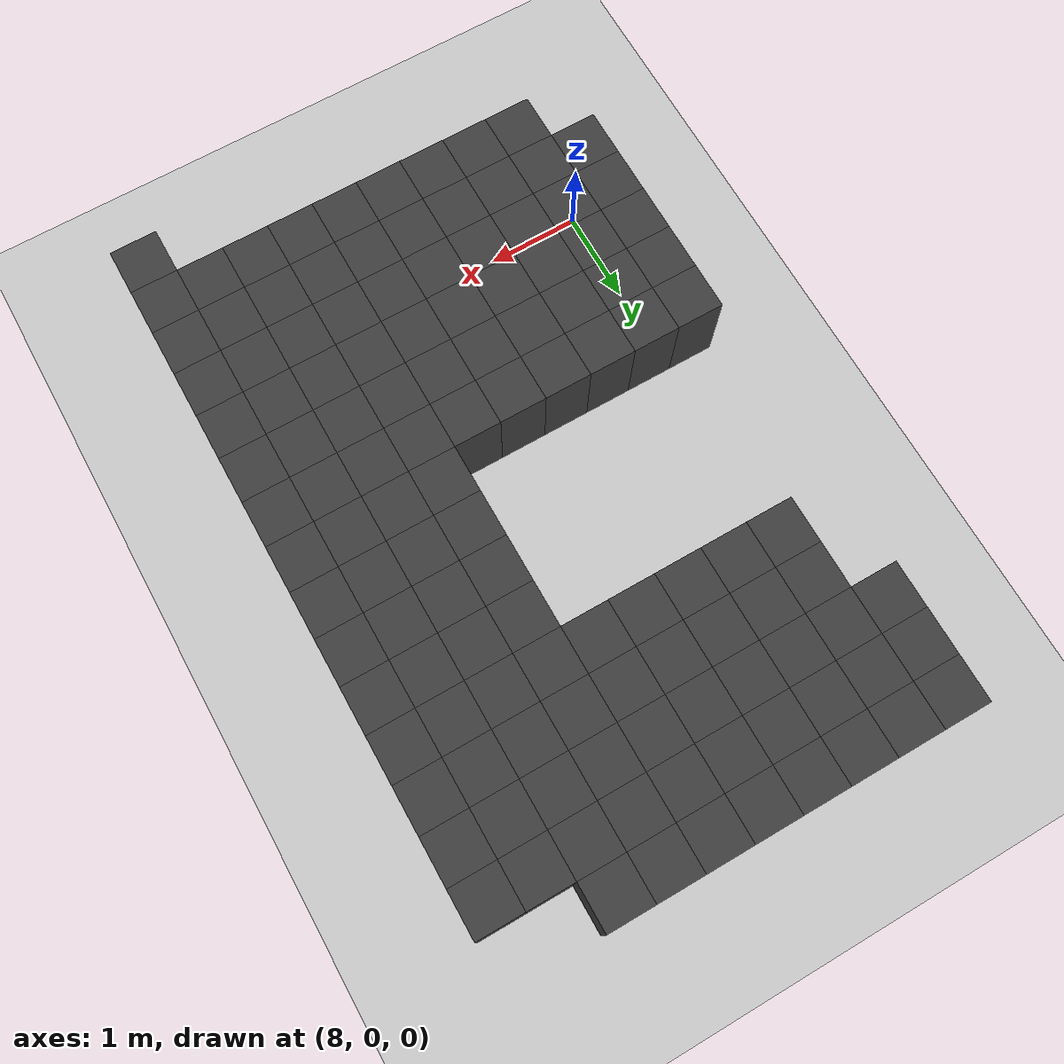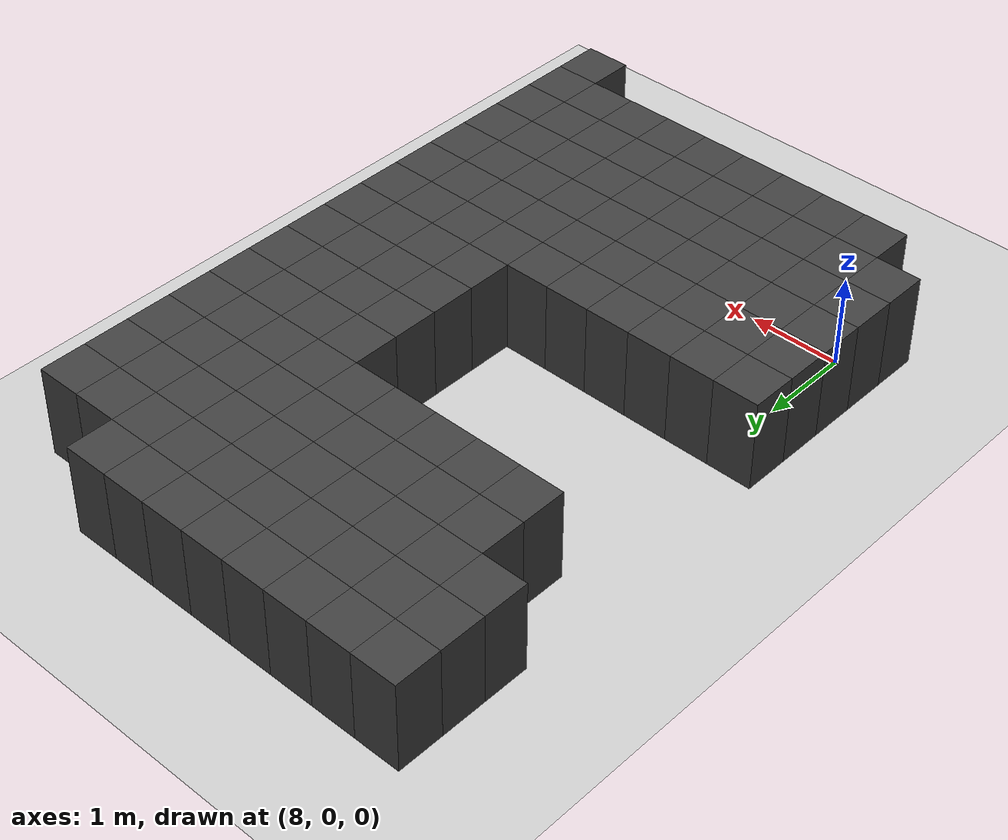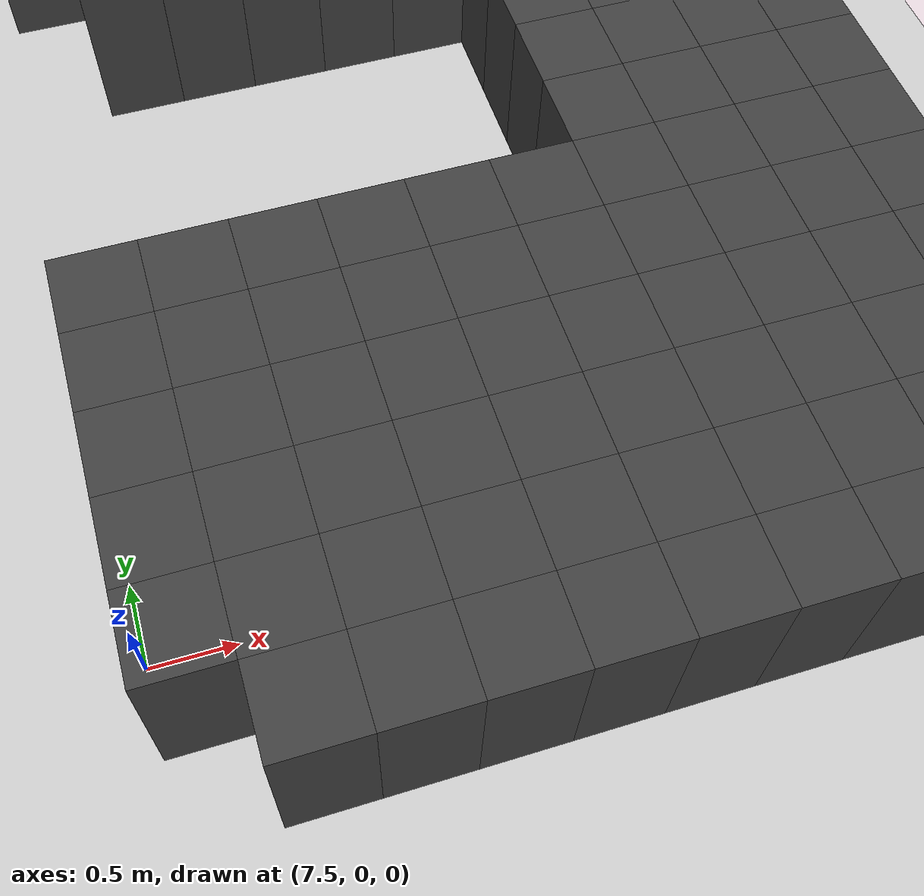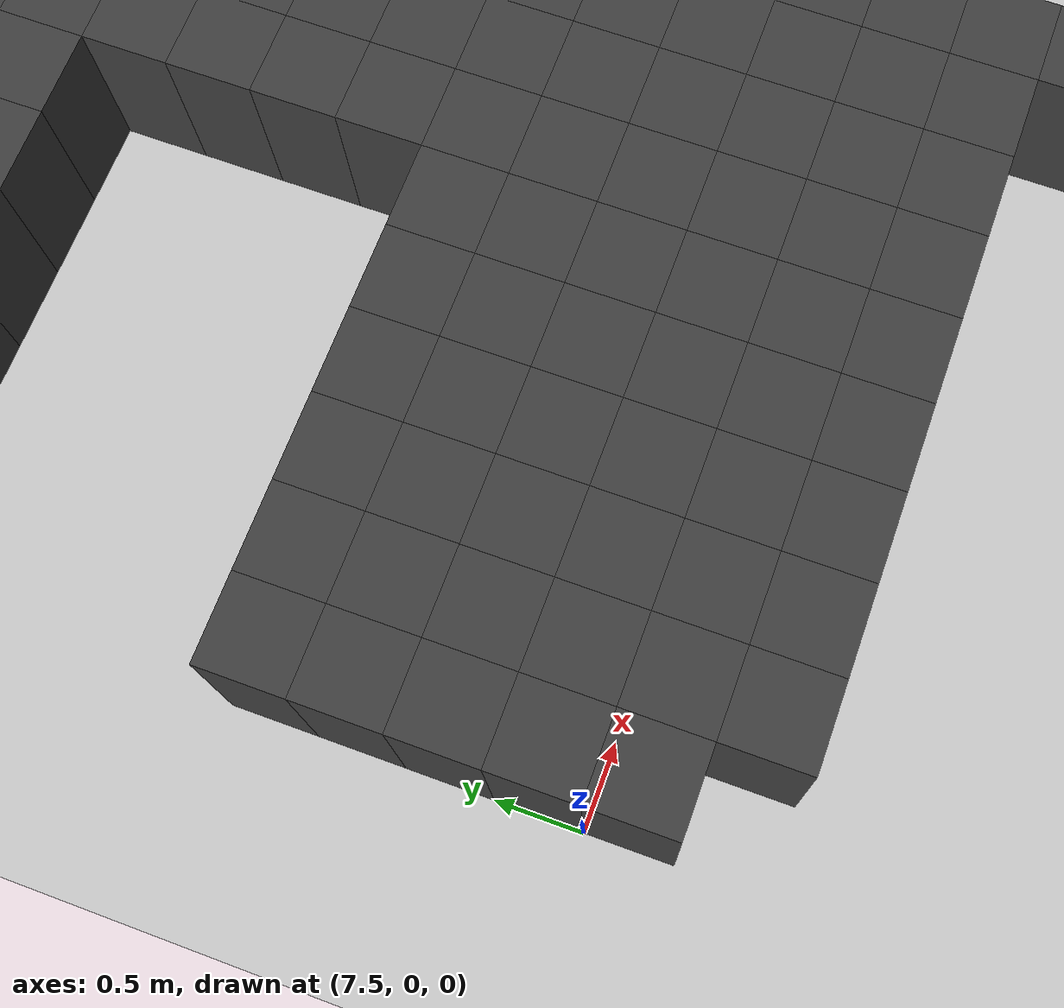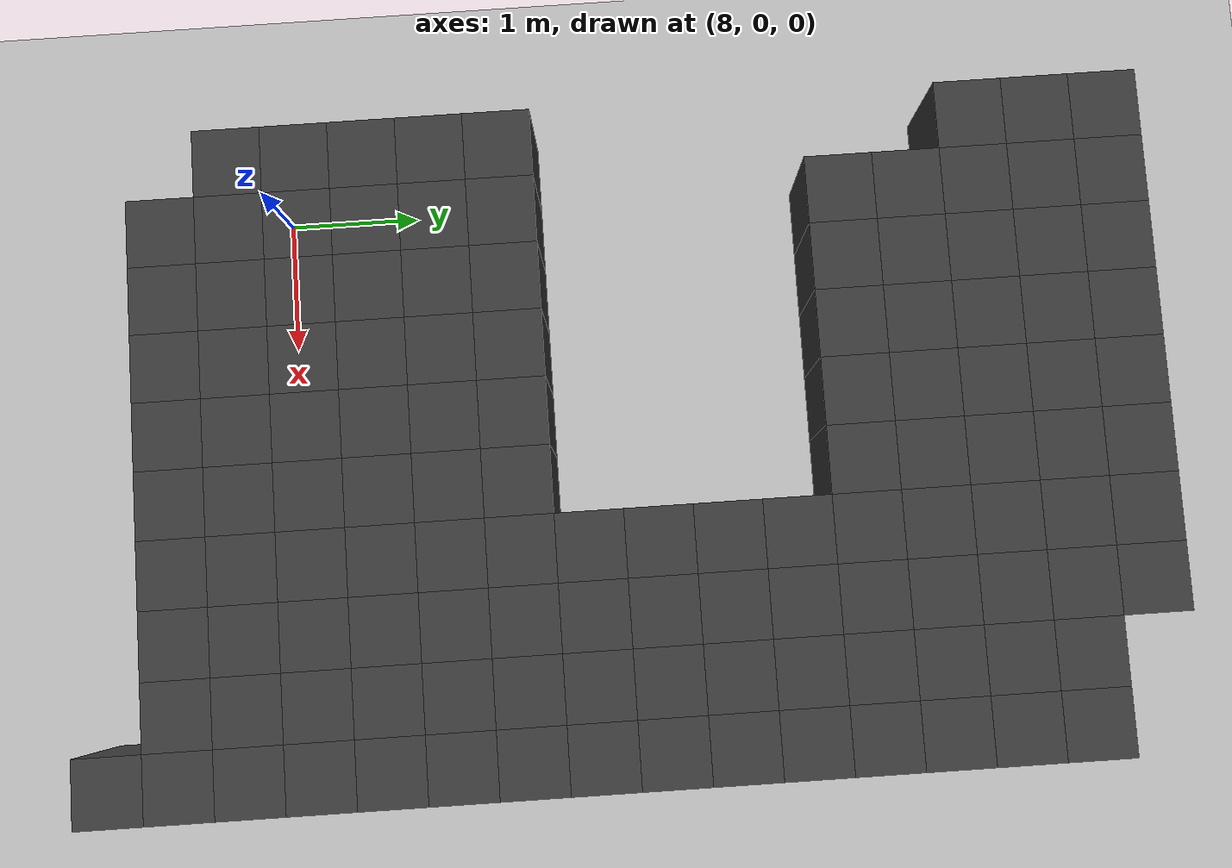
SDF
<sdf version="1.7">
 <world name="map_14888">
  <model name="ground_plane">
   <static>true</static>
   <link name="link">
    <collision name="collision">
     <geometry><plane><normal>0 0 1</normal><size>200 200</size></plane></geometry>
    </collision>
    <visual name="visual">
     <geometry><plane><normal>0 0 1</normal><size>200 200</size></plane></geometry>
     <material><ambient>0.8 0.8 0.8 1</ambient><diffuse>0.8 0.8 0.8 1</diffuse></material>
    </visual>
   </link>
  </model>
  <model name="maze_environment">
   <static>true</static>
   <link name="wall_482">
    <pose>7.750 6.250 0.500 0 0 0</pose>
    <collision name="col"><geometry><box><size>0.5 0.5 1.0</size></box></geometry></collision>
    <visual name="vis">
     <geometry><box><size>0.5 0.5 1.0</size></box></geometry>
     <material><ambient>0.15 0.15 0.15 1</ambient><diffuse>0.25 0.25 0.25 1</diffuse></material>
    </visual>
   </link>
   <link name="wall_483">
    <pose>8.250 6.250 0.500 0 0 0</pose>
    <collision name="col"><geometry><box><size>0.5 0.5 1.0</size></box></geometry></collision>
    <visual name="vis">
     <geometry><box><size>0.5 0.5 1.0</size></box></geometry>
     <material><ambient>0.15 0.15 0.15 1</ambient><diffuse>0.25 0.25 0.25 1</diffuse></material>
    </visual>
   </link>
   <link name="wall_484">
    <pose>8.750 6.250 0.500 0 0 0</pose>
    <collision name="col"><geometry><box><size>0.5 0.5 1.0</size></box></geometry></collision>
    <visual name="vis">
     <geometry><box><size>0.5 0.5 1.0</size></box></geometry>
     <material><ambient>0.15 0.15 0.15 1</ambient><diffuse>0.25 0.25 0.25 1</diffuse></material>
    </visual>
   </link>
   <link name="wall_485">
    <pose>9.250 6.250 0.500 0 0 0</pose>
    <collision name="col"><geometry><box><size>0.5 0.5 1.0</size></box></geometry></collision>
    <visual name="vis">
     <geometry><box><size>0.5 0.5 1.0</size></box></geometry>
     <material><ambient>0.15 0.15 0.15 1</ambient><diffuse>0.25 0.25 0.25 1</diffuse></material>
    </visual>
   </link>
   <link name="wall_486">
    <pose>9.750 6.250 0.500 0 0 0</pose>
    <collision name="col"><geometry><box><size>0.5 0.5 1.0</size></box></geometry></collision>
    <visual name="vis">
     <geometry><box><size>0.5 0.5 1.0</size></box></geometry>
     <material><ambient>0.15 0.15 0.15 1</ambient><diffuse>0.25 0.25 0.25 1</diffuse></material>
    </visual>
   </link>
   <link name="wall_487">
    <pose>10.250 6.250 0.500 0 0 0</pose>
    <collision name="col"><geometry><box><size>0.5 0.5 1.0</size></box></geometry></collision>
    <visual name="vis">
     <geometry><box><size>0.5 0.5 1.0</size></box></geometry>
     <material><ambient>0.15 0.15 0.15 1</ambient><diffuse>0.25 0.25 0.25 1</diffuse></material>
    </visual>
   </link>
   <link name="wall_488">
    <pose>10.750 6.250 0.500 0 0 0</pose>
    <collision name="col"><geometry><box><size>0.5 0.5 1.0</size></box></geometry></collision>
    <visual name="vis">
     <geometry><box><size>0.5 0.5 1.0</size></box></geometry>
     <material><ambient>0.15 0.15 0.15 1</ambient><diffuse>0.25 0.25 0.25 1</diffuse></material>
    </visual>
   </link>
   <link name="wall_489">
    <pose>11.250 6.250 0.500 0 0 0</pose>
    <collision name="col"><geometry><box><size>0.5 0.5 1.0</size></box></geometry></collision>
    <visual name="vis">
     <geometry><box><size>0.5 0.5 1.0</size></box></geometry>
     <material><ambient>0.15 0.15 0.15 1</ambient><diffuse>0.25 0.25 0.25 1</diffuse></material>
    </visual>
   </link>
   <link name="wall_517">
    <pose>7.750 5.750 0.500 0 0 0</pose>
    <collision name="col"><geometry><box><size>0.5 0.5 1.0</size></box></geometry></collision>
    <visual name="vis">
     <geometry><box><size>0.5 0.5 1.0</size></box></geometry>
     <material><ambient>0.15 0.15 0.15 1</ambient><diffuse>0.25 0.25 0.25 1</diffuse></material>
    </visual>
   </link>
   <link name="wall_518">
    <pose>8.250 5.750 0.500 0 0 0</pose>
    <collision name="col"><geometry><box><size>0.5 0.5 1.0</size></box></geometry></collision>
    <visual name="vis">
     <geometry><box><size>0.5 0.5 1.0</size></box></geometry>
     <material><ambient>0.15 0.15 0.15 1</ambient><diffuse>0.25 0.25 0.25 1</diffuse></material>
    </visual>
   </link>
   <link name="wall_519">
    <pose>8.750 5.750 0.500 0 0 0</pose>
    <collision name="col"><geometry><box><size>0.5 0.5 1.0</size></box></geometry></collision>
    <visual name="vis">
     <geometry><box><size>0.5 0.5 1.0</size></box></geometry>
     <material><ambient>0.15 0.15 0.15 1</ambient><diffuse>0.25 0.25 0.25 1</diffuse></material>
    </visual>
   </link>
   <link name="wall_520">
    <pose>9.250 5.750 0.500 0 0 0</pose>
    <collision name="col"><geometry><box><size>0.5 0.5 1.0</size></box></geometry></collision>
    <visual name="vis">
     <geometry><box><size>0.5 0.5 1.0</size></box></geometry>
     <material><ambient>0.15 0.15 0.15 1</ambient><diffuse>0.25 0.25 0.25 1</diffuse></material>
    </visual>
   </link>
   <link name="wall_521">
    <pose>9.750 5.750 0.500 0 0 0</pose>
    <collision name="col"><geometry><box><size>0.5 0.5 1.0</size></box></geometry></collision>
    <visual name="vis">
     <geometry><box><size>0.5 0.5 1.0</size></box></geometry>
     <material><ambient>0.15 0.15 0.15 1</ambient><diffuse>0.25 0.25 0.25 1</diffuse></material>
    </visual>
   </link>
   <link name="wall_522">
    <pose>10.250 5.750 0.500 0 0 0</pose>
    <collision name="col"><geometry><box><size>0.5 0.5 1.0</size></box></geometry></collision>
    <visual name="vis">
     <geometry><box><size>0.5 0.5 1.0</size></box></geometry>
     <material><ambient>0.15 0.15 0.15 1</ambient><diffuse>0.25 0.25 0.25 1</diffuse></material>
    </visual>
   </link>
   <link name="wall_523">
    <pose>10.750 5.750 0.500 0 0 0</pose>
    <collision name="col"><geometry><box><size>0.5 0.5 1.0</size></box></geometry></collision>
    <visual name="vis">
     <geometry><box><size>0.5 0.5 1.0</size></box></geometry>
     <material><ambient>0.15 0.15 0.15 1</ambient><diffuse>0.25 0.25 0.25 1</diffuse></material>
    </visual>
   </link>
   <link name="wall_524">
    <pose>11.250 5.750 0.500 0 0 0</pose>
    <collision name="col"><geometry><box><size>0.5 0.5 1.0</size></box></geometry></collision>
    <visual name="vis">
     <geometry><box><size>0.5 0.5 1.0</size></box></geometry>
     <material><ambient>0.15 0.15 0.15 1</ambient><diffuse>0.25 0.25 0.25 1</diffuse></material>
    </visual>
   </link>
   <link name="wall_525">
    <pose>11.750 5.750 0.500 0 0 0</pose>
    <collision name="col"><geometry><box><size>0.5 0.5 1.0</size></box></geometry></collision>
    <visual name="vis">
     <geometry><box><size>0.5 0.5 1.0</size></box></geometry>
     <material><ambient>0.15 0.15 0.15 1</ambient><diffuse>0.25 0.25 0.25 1</diffuse></material>
    </visual>
   </link>
   <link name="wall_526">
    <pose>12.250 5.750 0.500 0 0 0</pose>
    <collision name="col"><geometry><box><size>0.5 0.5 1.0</size></box></geometry></collision>
    <visual name="vis">
     <geometry><box><size>0.5 0.5 1.0</size></box></geometry>
     <material><ambient>0.15 0.15 0.15 1</ambient><diffuse>0.25 0.25 0.25 1</diffuse></material>
    </visual>
   </link>
   <link name="wall_552">
    <pose>7.750 5.250 0.500 0 0 0</pose>
    <collision name="col"><geometry><box><size>0.5 0.5 1.0</size></box></geometry></collision>
    <visual name="vis">
     <geometry><box><size>0.5 0.5 1.0</size></box></geometry>
     <material><ambient>0.15 0.15 0.15 1</ambient><diffuse>0.25 0.25 0.25 1</diffuse></material>
    </visual>
   </link>
   <link name="wall_553">
    <pose>8.250 5.250 0.500 0 0 0</pose>
    <collision name="col"><geometry><box><size>0.5 0.5 1.0</size></box></geometry></collision>
    <visual name="vis">
     <geometry><box><size>0.5 0.5 1.0</size></box></geometry>
     <material><ambient>0.15 0.15 0.15 1</ambient><diffuse>0.25 0.25 0.25 1</diffuse></material>
    </visual>
   </link>
   <link name="wall_554">
    <pose>8.750 5.250 0.500 0 0 0</pose>
    <collision name="col"><geometry><box><size>0.5 0.5 1.0</size></box></geometry></collision>
    <visual name="vis">
     <geometry><box><size>0.5 0.5 1.0</size></box></geometry>
     <material><ambient>0.15 0.15 0.15 1</ambient><diffuse>0.25 0.25 0.25 1</diffuse></material>
    </visual>
   </link>
   <link name="wall_555">
    <pose>9.250 5.250 0.500 0 0 0</pose>
    <collision name="col"><geometry><box><size>0.5 0.5 1.0</size></box></geometry></collision>
    <visual name="vis">
     <geometry><box><size>0.5 0.5 1.0</size></box></geometry>
     <material><ambient>0.15 0.15 0.15 1</ambient><diffuse>0.25 0.25 0.25 1</diffuse></material>
    </visual>
   </link>
   <link name="wall_556">
    <pose>9.750 5.250 0.500 0 0 0</pose>
    <collision name="col"><geometry><box><size>0.5 0.5 1.0</size></box></geometry></collision>
    <visual name="vis">
     <geometry><box><size>0.5 0.5 1.0</size></box></geometry>
     <material><ambient>0.15 0.15 0.15 1</ambient><diffuse>0.25 0.25 0.25 1</diffuse></material>
    </visual>
   </link>
   <link name="wall_557">
    <pose>10.250 5.250 0.500 0 0 0</pose>
    <collision name="col"><geometry><box><size>0.5 0.5 1.0</size></box></geometry></collision>
    <visual name="vis">
     <geometry><box><size>0.5 0.5 1.0</size></box></geometry>
     <material><ambient>0.15 0.15 0.15 1</ambient><diffuse>0.25 0.25 0.25 1</diffuse></material>
    </visual>
   </link>
   <link name="wall_558">
    <pose>10.750 5.250 0.500 0 0 0</pose>
    <collision name="col"><geometry><box><size>0.5 0.5 1.0</size></box></geometry></collision>
    <visual name="vis">
     <geometry><box><size>0.5 0.5 1.0</size></box></geometry>
     <material><ambient>0.15 0.15 0.15 1</ambient><diffuse>0.25 0.25 0.25 1</diffuse></material>
    </visual>
   </link>
   <link name="wall_559">
    <pose>11.250 5.250 0.500 0 0 0</pose>
    <collision name="col"><geometry><box><size>0.5 0.5 1.0</size></box></geometry></collision>
    <visual name="vis">
     <geometry><box><size>0.5 0.5 1.0</size></box></geometry>
     <material><ambient>0.15 0.15 0.15 1</ambient><diffuse>0.25 0.25 0.25 1</diffuse></material>
    </visual>
   </link>
   <link name="wall_560">
    <pose>11.750 5.250 0.500 0 0 0</pose>
    <collision name="col"><geometry><box><size>0.5 0.5 1.0</size></box></geometry></collision>
    <visual name="vis">
     <geometry><box><size>0.5 0.5 1.0</size></box></geometry>
     <material><ambient>0.15 0.15 0.15 1</ambient><diffuse>0.25 0.25 0.25 1</diffuse></material>
    </visual>
   </link>
   <link name="wall_561">
    <pose>12.250 5.250 0.500 0 0 0</pose>
    <collision name="col"><geometry><box><size>0.5 0.5 1.0</size></box></geometry></collision>
    <visual name="vis">
     <geometry><box><size>0.5 0.5 1.0</size></box></geometry>
     <material><ambient>0.15 0.15 0.15 1</ambient><diffuse>0.25 0.25 0.25 1</diffuse></material>
    </visual>
   </link>
   <link name="wall_581">
    <pose>8.250 4.750 0.500 0 0 0</pose>
    <collision name="col"><geometry><box><size>0.5 0.5 1.0</size></box></geometry></collision>
    <visual name="vis">
     <geometry><box><size>0.5 0.5 1.0</size></box></geometry>
     <material><ambient>0.15 0.15 0.15 1</ambient><diffuse>0.25 0.25 0.25 1</diffuse></material>
    </visual>
   </link>
   <link name="wall_582">
    <pose>8.750 4.750 0.500 0 0 0</pose>
    <collision name="col"><geometry><box><size>0.5 0.5 1.0</size></box></geometry></collision>
    <visual name="vis">
     <geometry><box><size>0.5 0.5 1.0</size></box></geometry>
     <material><ambient>0.15 0.15 0.15 1</ambient><diffuse>0.25 0.25 0.25 1</diffuse></material>
    </visual>
   </link>
   <link name="wall_583">
    <pose>9.250 4.750 0.500 0 0 0</pose>
    <collision name="col"><geometry><box><size>0.5 0.5 1.0</size></box></geometry></collision>
    <visual name="vis">
     <geometry><box><size>0.5 0.5 1.0</size></box></geometry>
     <material><ambient>0.15 0.15 0.15 1</ambient><diffuse>0.25 0.25 0.25 1</diffuse></material>
    </visual>
   </link>
   <link name="wall_584">
    <pose>9.750 4.750 0.500 0 0 0</pose>
    <collision name="col"><geometry><box><size>0.5 0.5 1.0</size></box></geometry></collision>
    <visual name="vis">
     <geometry><box><size>0.5 0.5 1.0</size></box></geometry>
     <material><ambient>0.15 0.15 0.15 1</ambient><diffuse>0.25 0.25 0.25 1</diffuse></material>
    </visual>
   </link>
   <link name="wall_585">
    <pose>10.250 4.750 0.500 0 0 0</pose>
    <collision name="col"><geometry><box><size>0.5 0.5 1.0</size></box></geometry></collision>
    <visual name="vis">
     <geometry><box><size>0.5 0.5 1.0</size></box></geometry>
     <material><ambient>0.15 0.15 0.15 1</ambient><diffuse>0.25 0.25 0.25 1</diffuse></material>
    </visual>
   </link>
   <link name="wall_586">
    <pose>10.750 4.750 0.500 0 0 0</pose>
    <collision name="col"><geometry><box><size>0.5 0.5 1.0</size></box></geometry></collision>
    <visual name="vis">
     <geometry><box><size>0.5 0.5 1.0</size></box></geometry>
     <material><ambient>0.15 0.15 0.15 1</ambient><diffuse>0.25 0.25 0.25 1</diffuse></material>
    </visual>
   </link>
   <link name="wall_587">
    <pose>11.250 4.750 0.500 0 0 0</pose>
    <collision name="col"><geometry><box><size>0.5 0.5 1.0</size></box></geometry></collision>
    <visual name="vis">
     <geometry><box><size>0.5 0.5 1.0</size></box></geometry>
     <material><ambient>0.15 0.15 0.15 1</ambient><diffuse>0.25 0.25 0.25 1</diffuse></material>
    </visual>
   </link>
   <link name="wall_588">
    <pose>11.750 4.750 0.500 0 0 0</pose>
    <collision name="col"><geometry><box><size>0.5 0.5 1.0</size></box></geometry></collision>
    <visual name="vis">
     <geometry><box><size>0.5 0.5 1.0</size></box></geometry>
     <material><ambient>0.15 0.15 0.15 1</ambient><diffuse>0.25 0.25 0.25 1</diffuse></material>
    </visual>
   </link>
   <link name="wall_589">
    <pose>12.250 4.750 0.500 0 0 0</pose>
    <collision name="col"><geometry><box><size>0.5 0.5 1.0</size></box></geometry></collision>
    <visual name="vis">
     <geometry><box><size>0.5 0.5 1.0</size></box></geometry>
     <material><ambient>0.15 0.15 0.15 1</ambient><diffuse>0.25 0.25 0.25 1</diffuse></material>
    </visual>
   </link>
   <link name="wall_605">
    <pose>8.250 4.250 0.500 0 0 0</pose>
    <collision name="col"><geometry><box><size>0.5 0.5 1.0</size></box></geometry></collision>
    <visual name="vis">
     <geometry><box><size>0.5 0.5 1.0</size></box></geometry>
     <material><ambient>0.15 0.15 0.15 1</ambient><diffuse>0.25 0.25 0.25 1</diffuse></material>
    </visual>
   </link>
   <link name="wall_606">
    <pose>8.750 4.250 0.500 0 0 0</pose>
    <collision name="col"><geometry><box><size>0.5 0.5 1.0</size></box></geometry></collision>
    <visual name="vis">
     <geometry><box><size>0.5 0.5 1.0</size></box></geometry>
     <material><ambient>0.15 0.15 0.15 1</ambient><diffuse>0.25 0.25 0.25 1</diffuse></material>
    </visual>
   </link>
   <link name="wall_607">
    <pose>9.250 4.250 0.500 0 0 0</pose>
    <collision name="col"><geometry><box><size>0.5 0.5 1.0</size></box></geometry></collision>
    <visual name="vis">
     <geometry><box><size>0.5 0.5 1.0</size></box></geometry>
     <material><ambient>0.15 0.15 0.15 1</ambient><diffuse>0.25 0.25 0.25 1</diffuse></material>
    </visual>
   </link>
   <link name="wall_608">
    <pose>9.750 4.250 0.500 0 0 0</pose>
    <collision name="col"><geometry><box><size>0.5 0.5 1.0</size></box></geometry></collision>
    <visual name="vis">
     <geometry><box><size>0.5 0.5 1.0</size></box></geometry>
     <material><ambient>0.15 0.15 0.15 1</ambient><diffuse>0.25 0.25 0.25 1</diffuse></material>
    </visual>
   </link>
   <link name="wall_609">
    <pose>10.250 4.250 0.500 0 0 0</pose>
    <collision name="col"><geometry><box><size>0.5 0.5 1.0</size></box></geometry></collision>
    <visual name="vis">
     <geometry><box><size>0.5 0.5 1.0</size></box></geometry>
     <material><ambient>0.15 0.15 0.15 1</ambient><diffuse>0.25 0.25 0.25 1</diffuse></material>
    </visual>
   </link>
   <link name="wall_610">
    <pose>10.750 4.250 0.500 0 0 0</pose>
    <collision name="col"><geometry><box><size>0.5 0.5 1.0</size></box></geometry></collision>
    <visual name="vis">
     <geometry><box><size>0.5 0.5 1.0</size></box></geometry>
     <material><ambient>0.15 0.15 0.15 1</ambient><diffuse>0.25 0.25 0.25 1</diffuse></material>
    </visual>
   </link>
   <link name="wall_611">
    <pose>11.250 4.250 0.500 0 0 0</pose>
    <collision name="col"><geometry><box><size>0.5 0.5 1.0</size></box></geometry></collision>
    <visual name="vis">
     <geometry><box><size>0.5 0.5 1.0</size></box></geometry>
     <material><ambient>0.15 0.15 0.15 1</ambient><diffuse>0.25 0.25 0.25 1</diffuse></material>
    </visual>
   </link>
   <link name="wall_612">
    <pose>11.750 4.250 0.500 0 0 0</pose>
    <collision name="col"><geometry><box><size>0.5 0.5 1.0</size></box></geometry></collision>
    <visual name="vis">
     <geometry><box><size>0.5 0.5 1.0</size></box></geometry>
     <material><ambient>0.15 0.15 0.15 1</ambient><diffuse>0.25 0.25 0.25 1</diffuse></material>
    </visual>
   </link>
   <link name="wall_613">
    <pose>12.250 4.250 0.500 0 0 0</pose>
    <collision name="col"><geometry><box><size>0.5 0.5 1.0</size></box></geometry></collision>
    <visual name="vis">
     <geometry><box><size>0.5 0.5 1.0</size></box></geometry>
     <material><ambient>0.15 0.15 0.15 1</ambient><diffuse>0.25 0.25 0.25 1</diffuse></material>
    </visual>
   </link>
   <link name="wall_630">
    <pose>10.750 3.750 0.500 0 0 0</pose>
    <collision name="col"><geometry><box><size>0.5 0.5 1.0</size></box></geometry></collision>
    <visual name="vis">
     <geometry><box><size>0.5 0.5 1.0</size></box></geometry>
     <material><ambient>0.15 0.15 0.15 1</ambient><diffuse>0.25 0.25 0.25 1</diffuse></material>
    </visual>
   </link>
   <link name="wall_631">
    <pose>11.250 3.750 0.500 0 0 0</pose>
    <collision name="col"><geometry><box><size>0.5 0.5 1.0</size></box></geometry></collision>
    <visual name="vis">
     <geometry><box><size>0.5 0.5 1.0</size></box></geometry>
     <material><ambient>0.15 0.15 0.15 1</ambient><diffuse>0.25 0.25 0.25 1</diffuse></material>
    </visual>
   </link>
   <link name="wall_632">
    <pose>11.750 3.750 0.500 0 0 0</pose>
    <collision name="col"><geometry><box><size>0.5 0.5 1.0</size></box></geometry></collision>
    <visual name="vis">
     <geometry><box><size>0.5 0.5 1.0</size></box></geometry>
     <material><ambient>0.15 0.15 0.15 1</ambient><diffuse>0.25 0.25 0.25 1</diffuse></material>
    </visual>
   </link>
   <link name="wall_633">
    <pose>12.250 3.750 0.500 0 0 0</pose>
    <collision name="col"><geometry><box><size>0.5 0.5 1.0</size></box></geometry></collision>
    <visual name="vis">
     <geometry><box><size>0.5 0.5 1.0</size></box></geometry>
     <material><ambient>0.15 0.15 0.15 1</ambient><diffuse>0.25 0.25 0.25 1</diffuse></material>
    </visual>
   </link>
   <link name="wall_650">
    <pose>10.750 3.250 0.500 0 0 0</pose>
    <collision name="col"><geometry><box><size>0.5 0.5 1.0</size></box></geometry></collision>
    <visual name="vis">
     <geometry><box><size>0.5 0.5 1.0</size></box></geometry>
     <material><ambient>0.15 0.15 0.15 1</ambient><diffuse>0.25 0.25 0.25 1</diffuse></material>
    </visual>
   </link>
   <link name="wall_651">
    <pose>11.250 3.250 0.500 0 0 0</pose>
    <collision name="col"><geometry><box><size>0.5 0.5 1.0</size></box></geometry></collision>
    <visual name="vis">
     <geometry><box><size>0.5 0.5 1.0</size></box></geometry>
     <material><ambient>0.15 0.15 0.15 1</ambient><diffuse>0.25 0.25 0.25 1</diffuse></material>
    </visual>
   </link>
   <link name="wall_652">
    <pose>11.750 3.250 0.500 0 0 0</pose>
    <collision name="col"><geometry><box><size>0.5 0.5 1.0</size></box></geometry></collision>
    <visual name="vis">
     <geometry><box><size>0.5 0.5 1.0</size></box></geometry>
     <material><ambient>0.15 0.15 0.15 1</ambient><diffuse>0.25 0.25 0.25 1</diffuse></material>
    </visual>
   </link>
   <link name="wall_653">
    <pose>12.250 3.250 0.500 0 0 0</pose>
    <collision name="col"><geometry><box><size>0.5 0.5 1.0</size></box></geometry></collision>
    <visual name="vis">
     <geometry><box><size>0.5 0.5 1.0</size></box></geometry>
     <material><ambient>0.15 0.15 0.15 1</ambient><diffuse>0.25 0.25 0.25 1</diffuse></material>
    </visual>
   </link>
   <link name="wall_674">
    <pose>10.750 2.750 0.500 0 0 0</pose>
    <collision name="col"><geometry><box><size>0.5 0.5 1.0</size></box></geometry></collision>
    <visual name="vis">
     <geometry><box><size>0.5 0.5 1.0</size></box></geometry>
     <material><ambient>0.15 0.15 0.15 1</ambient><diffuse>0.25 0.25 0.25 1</diffuse></material>
    </visual>
   </link>
   <link name="wall_675">
    <pose>11.250 2.750 0.500 0 0 0</pose>
    <collision name="col"><geometry><box><size>0.5 0.5 1.0</size></box></geometry></collision>
    <visual name="vis">
     <geometry><box><size>0.5 0.5 1.0</size></box></geometry>
     <material><ambient>0.15 0.15 0.15 1</ambient><diffuse>0.25 0.25 0.25 1</diffuse></material>
    </visual>
   </link>
   <link name="wall_676">
    <pose>11.750 2.750 0.500 0 0 0</pose>
    <collision name="col"><geometry><box><size>0.5 0.5 1.0</size></box></geometry></collision>
    <visual name="vis">
     <geometry><box><size>0.5 0.5 1.0</size></box></geometry>
     <material><ambient>0.15 0.15 0.15 1</ambient><diffuse>0.25 0.25 0.25 1</diffuse></material>
    </visual>
   </link>
   <link name="wall_677">
    <pose>12.250 2.750 0.500 0 0 0</pose>
    <collision name="col"><geometry><box><size>0.5 0.5 1.0</size></box></geometry></collision>
    <visual name="vis">
     <geometry><box><size>0.5 0.5 1.0</size></box></geometry>
     <material><ambient>0.15 0.15 0.15 1</ambient><diffuse>0.25 0.25 0.25 1</diffuse></material>
    </visual>
   </link>
   <link name="wall_698">
    <pose>10.750 2.250 0.500 0 0 0</pose>
    <collision name="col"><geometry><box><size>0.5 0.5 1.0</size></box></geometry></collision>
    <visual name="vis">
     <geometry><box><size>0.5 0.5 1.0</size></box></geometry>
     <material><ambient>0.15 0.15 0.15 1</ambient><diffuse>0.25 0.25 0.25 1</diffuse></material>
    </visual>
   </link>
   <link name="wall_699">
    <pose>11.250 2.250 0.500 0 0 0</pose>
    <collision name="col"><geometry><box><size>0.5 0.5 1.0</size></box></geometry></collision>
    <visual name="vis">
     <geometry><box><size>0.5 0.5 1.0</size></box></geometry>
     <material><ambient>0.15 0.15 0.15 1</ambient><diffuse>0.25 0.25 0.25 1</diffuse></material>
    </visual>
   </link>
   <link name="wall_700">
    <pose>11.750 2.250 0.500 0 0 0</pose>
    <collision name="col"><geometry><box><size>0.5 0.5 1.0</size></box></geometry></collision>
    <visual name="vis">
     <geometry><box><size>0.5 0.5 1.0</size></box></geometry>
     <material><ambient>0.15 0.15 0.15 1</ambient><diffuse>0.25 0.25 0.25 1</diffuse></material>
    </visual>
   </link>
   <link name="wall_701">
    <pose>12.250 2.250 0.500 0 0 0</pose>
    <collision name="col"><geometry><box><size>0.5 0.5 1.0</size></box></geometry></collision>
    <visual name="vis">
     <geometry><box><size>0.5 0.5 1.0</size></box></geometry>
     <material><ambient>0.15 0.15 0.15 1</ambient><diffuse>0.25 0.25 0.25 1</diffuse></material>
    </visual>
   </link>
   <link name="wall_729">
    <pose>7.750 1.750 0.500 0 0 0</pose>
    <collision name="col"><geometry><box><size>0.5 0.5 1.0</size></box></geometry></collision>
    <visual name="vis">
     <geometry><box><size>0.5 0.5 1.0</size></box></geometry>
     <material><ambient>0.15 0.15 0.15 1</ambient><diffuse>0.25 0.25 0.25 1</diffuse></material>
    </visual>
   </link>
   <link name="wall_730">
    <pose>8.250 1.750 0.500 0 0 0</pose>
    <collision name="col"><geometry><box><size>0.5 0.5 1.0</size></box></geometry></collision>
    <visual name="vis">
     <geometry><box><size>0.5 0.5 1.0</size></box></geometry>
     <material><ambient>0.15 0.15 0.15 1</ambient><diffuse>0.25 0.25 0.25 1</diffuse></material>
    </visual>
   </link>
   <link name="wall_731">
    <pose>8.750 1.750 0.500 0 0 0</pose>
    <collision name="col"><geometry><box><size>0.5 0.5 1.0</size></box></geometry></collision>
    <visual name="vis">
     <geometry><box><size>0.5 0.5 1.0</size></box></geometry>
     <material><ambient>0.15 0.15 0.15 1</ambient><diffuse>0.25 0.25 0.25 1</diffuse></material>
    </visual>
   </link>
   <link name="wall_732">
    <pose>9.250 1.750 0.500 0 0 0</pose>
    <collision name="col"><geometry><box><size>0.5 0.5 1.0</size></box></geometry></collision>
    <visual name="vis">
     <geometry><box><size>0.5 0.5 1.0</size></box></geometry>
     <material><ambient>0.15 0.15 0.15 1</ambient><diffuse>0.25 0.25 0.25 1</diffuse></material>
    </visual>
   </link>
   <link name="wall_733">
    <pose>9.750 1.750 0.500 0 0 0</pose>
    <collision name="col"><geometry><box><size>0.5 0.5 1.0</size></box></geometry></collision>
    <visual name="vis">
     <geometry><box><size>0.5 0.5 1.0</size></box></geometry>
     <material><ambient>0.15 0.15 0.15 1</ambient><diffuse>0.25 0.25 0.25 1</diffuse></material>
    </visual>
   </link>
   <link name="wall_734">
    <pose>10.250 1.750 0.500 0 0 0</pose>
    <collision name="col"><geometry><box><size>0.5 0.5 1.0</size></box></geometry></collision>
    <visual name="vis">
     <geometry><box><size>0.5 0.5 1.0</size></box></geometry>
     <material><ambient>0.15 0.15 0.15 1</ambient><diffuse>0.25 0.25 0.25 1</diffuse></material>
    </visual>
   </link>
   <link name="wall_735">
    <pose>10.750 1.750 0.500 0 0 0</pose>
    <collision name="col"><geometry><box><size>0.5 0.5 1.0</size></box></geometry></collision>
    <visual name="vis">
     <geometry><box><size>0.5 0.5 1.0</size></box></geometry>
     <material><ambient>0.15 0.15 0.15 1</ambient><diffuse>0.25 0.25 0.25 1</diffuse></material>
    </visual>
   </link>
   <link name="wall_736">
    <pose>11.250 1.750 0.500 0 0 0</pose>
    <collision name="col"><geometry><box><size>0.5 0.5 1.0</size></box></geometry></collision>
    <visual name="vis">
     <geometry><box><size>0.5 0.5 1.0</size></box></geometry>
     <material><ambient>0.15 0.15 0.15 1</ambient><diffuse>0.25 0.25 0.25 1</diffuse></material>
    </visual>
   </link>
   <link name="wall_737">
    <pose>11.750 1.750 0.500 0 0 0</pose>
    <collision name="col"><geometry><box><size>0.5 0.5 1.0</size></box></geometry></collision>
    <visual name="vis">
     <geometry><box><size>0.5 0.5 1.0</size></box></geometry>
     <material><ambient>0.15 0.15 0.15 1</ambient><diffuse>0.25 0.25 0.25 1</diffuse></material>
    </visual>
   </link>
   <link name="wall_738">
    <pose>12.250 1.750 0.500 0 0 0</pose>
    <collision name="col"><geometry><box><size>0.5 0.5 1.0</size></box></geometry></collision>
    <visual name="vis">
     <geometry><box><size>0.5 0.5 1.0</size></box></geometry>
     <material><ambient>0.15 0.15 0.15 1</ambient><diffuse>0.25 0.25 0.25 1</diffuse></material>
    </visual>
   </link>
   <link name="wall_771">
    <pose>7.750 1.250 0.500 0 0 0</pose>
    <collision name="col"><geometry><box><size>0.5 0.5 1.0</size></box></geometry></collision>
    <visual name="vis">
     <geometry><box><size>0.5 0.5 1.0</size></box></geometry>
     <material><ambient>0.15 0.15 0.15 1</ambient><diffuse>0.25 0.25 0.25 1</diffuse></material>
    </visual>
   </link>
   <link name="wall_772">
    <pose>8.250 1.250 0.500 0 0 0</pose>
    <collision name="col"><geometry><box><size>0.5 0.5 1.0</size></box></geometry></collision>
    <visual name="vis">
     <geometry><box><size>0.5 0.5 1.0</size></box></geometry>
     <material><ambient>0.15 0.15 0.15 1</ambient><diffuse>0.25 0.25 0.25 1</diffuse></material>
    </visual>
   </link>
   <link name="wall_773">
    <pose>8.750 1.250 0.500 0 0 0</pose>
    <collision name="col"><geometry><box><size>0.5 0.5 1.0</size></box></geometry></collision>
    <visual name="vis">
     <geometry><box><size>0.5 0.5 1.0</size></box></geometry>
     <material><ambient>0.15 0.15 0.15 1</ambient><diffuse>0.25 0.25 0.25 1</diffuse></material>
    </visual>
   </link>
   <link name="wall_774">
    <pose>9.250 1.250 0.500 0 0 0</pose>
    <collision name="col"><geometry><box><size>0.5 0.5 1.0</size></box></geometry></collision>
    <visual name="vis">
     <geometry><box><size>0.5 0.5 1.0</size></box></geometry>
     <material><ambient>0.15 0.15 0.15 1</ambient><diffuse>0.25 0.25 0.25 1</diffuse></material>
    </visual>
   </link>
   <link name="wall_775">
    <pose>9.750 1.250 0.500 0 0 0</pose>
    <collision name="col"><geometry><box><size>0.5 0.5 1.0</size></box></geometry></collision>
    <visual name="vis">
     <geometry><box><size>0.5 0.5 1.0</size></box></geometry>
     <material><ambient>0.15 0.15 0.15 1</ambient><diffuse>0.25 0.25 0.25 1</diffuse></material>
    </visual>
   </link>
   <link name="wall_776">
    <pose>10.250 1.250 0.500 0 0 0</pose>
    <collision name="col"><geometry><box><size>0.5 0.5 1.0</size></box></geometry></collision>
    <visual name="vis">
     <geometry><box><size>0.5 0.5 1.0</size></box></geometry>
     <material><ambient>0.15 0.15 0.15 1</ambient><diffuse>0.25 0.25 0.25 1</diffuse></material>
    </visual>
   </link>
   <link name="wall_777">
    <pose>10.750 1.250 0.500 0 0 0</pose>
    <collision name="col"><geometry><box><size>0.5 0.5 1.0</size></box></geometry></collision>
    <visual name="vis">
     <geometry><box><size>0.5 0.5 1.0</size></box></geometry>
     <material><ambient>0.15 0.15 0.15 1</ambient><diffuse>0.25 0.25 0.25 1</diffuse></material>
    </visual>
   </link>
   <link name="wall_778">
    <pose>11.250 1.250 0.500 0 0 0</pose>
    <collision name="col"><geometry><box><size>0.5 0.5 1.0</size></box></geometry></collision>
    <visual name="vis">
     <geometry><box><size>0.5 0.5 1.0</size></box></geometry>
     <material><ambient>0.15 0.15 0.15 1</ambient><diffuse>0.25 0.25 0.25 1</diffuse></material>
    </visual>
   </link>
   <link name="wall_779">
    <pose>11.750 1.250 0.500 0 0 0</pose>
    <collision name="col"><geometry><box><size>0.5 0.5 1.0</size></box></geometry></collision>
    <visual name="vis">
     <geometry><box><size>0.5 0.5 1.0</size></box></geometry>
     <material><ambient>0.15 0.15 0.15 1</ambient><diffuse>0.25 0.25 0.25 1</diffuse></material>
    </visual>
   </link>
   <link name="wall_780">
    <pose>12.250 1.250 0.500 0 0 0</pose>
    <collision name="col"><geometry><box><size>0.5 0.5 1.0</size></box></geometry></collision>
    <visual name="vis">
     <geometry><box><size>0.5 0.5 1.0</size></box></geometry>
     <material><ambient>0.15 0.15 0.15 1</ambient><diffuse>0.25 0.25 0.25 1</diffuse></material>
    </visual>
   </link>
   <link name="wall_813">
    <pose>7.750 0.750 0.500 0 0 0</pose>
    <collision name="col"><geometry><box><size>0.5 0.5 1.0</size></box></geometry></collision>
    <visual name="vis">
     <geometry><box><size>0.5 0.5 1.0</size></box></geometry>
     <material><ambient>0.15 0.15 0.15 1</ambient><diffuse>0.25 0.25 0.25 1</diffuse></material>
    </visual>
   </link>
   <link name="wall_814">
    <pose>8.250 0.750 0.500 0 0 0</pose>
    <collision name="col"><geometry><box><size>0.5 0.5 1.0</size></box></geometry></collision>
    <visual name="vis">
     <geometry><box><size>0.5 0.5 1.0</size></box></geometry>
     <material><ambient>0.15 0.15 0.15 1</ambient><diffuse>0.25 0.25 0.25 1</diffuse></material>
    </visual>
   </link>
   <link name="wall_815">
    <pose>8.750 0.750 0.500 0 0 0</pose>
    <collision name="col"><geometry><box><size>0.5 0.5 1.0</size></box></geometry></collision>
    <visual name="vis">
     <geometry><box><size>0.5 0.5 1.0</size></box></geometry>
     <material><ambient>0.15 0.15 0.15 1</ambient><diffuse>0.25 0.25 0.25 1</diffuse></material>
    </visual>
   </link>
   <link name="wall_816">
    <pose>9.250 0.750 0.500 0 0 0</pose>
    <collision name="col"><geometry><box><size>0.5 0.5 1.0</size></box></geometry></collision>
    <visual name="vis">
     <geometry><box><size>0.5 0.5 1.0</size></box></geometry>
     <material><ambient>0.15 0.15 0.15 1</ambient><diffuse>0.25 0.25 0.25 1</diffuse></material>
    </visual>
   </link>
   <link name="wall_817">
    <pose>9.750 0.750 0.500 0 0 0</pose>
    <collision name="col"><geometry><box><size>0.5 0.5 1.0</size></box></geometry></collision>
    <visual name="vis">
     <geometry><box><size>0.5 0.5 1.0</size></box></geometry>
     <material><ambient>0.15 0.15 0.15 1</ambient><diffuse>0.25 0.25 0.25 1</diffuse></material>
    </visual>
   </link>
   <link name="wall_818">
    <pose>10.250 0.750 0.500 0 0 0</pose>
    <collision name="col"><geometry><box><size>0.5 0.5 1.0</size></box></geometry></collision>
    <visual name="vis">
     <geometry><box><size>0.5 0.5 1.0</size></box></geometry>
     <material><ambient>0.15 0.15 0.15 1</ambient><diffuse>0.25 0.25 0.25 1</diffuse></material>
    </visual>
   </link>
   <link name="wall_819">
    <pose>10.750 0.750 0.500 0 0 0</pose>
    <collision name="col"><geometry><box><size>0.5 0.5 1.0</size></box></geometry></collision>
    <visual name="vis">
     <geometry><box><size>0.5 0.5 1.0</size></box></geometry>
     <material><ambient>0.15 0.15 0.15 1</ambient><diffuse>0.25 0.25 0.25 1</diffuse></material>
    </visual>
   </link>
   <link name="wall_820">
    <pose>11.250 0.750 0.500 0 0 0</pose>
    <collision name="col"><geometry><box><size>0.5 0.5 1.0</size></box></geometry></collision>
    <visual name="vis">
     <geometry><box><size>0.5 0.5 1.0</size></box></geometry>
     <material><ambient>0.15 0.15 0.15 1</ambient><diffuse>0.25 0.25 0.25 1</diffuse></material>
    </visual>
   </link>
   <link name="wall_821">
    <pose>11.750 0.750 0.500 0 0 0</pose>
    <collision name="col"><geometry><box><size>0.5 0.5 1.0</size></box></geometry></collision>
    <visual name="vis">
     <geometry><box><size>0.5 0.5 1.0</size></box></geometry>
     <material><ambient>0.15 0.15 0.15 1</ambient><diffuse>0.25 0.25 0.25 1</diffuse></material>
    </visual>
   </link>
   <link name="wall_822">
    <pose>12.250 0.750 0.500 0 0 0</pose>
    <collision name="col"><geometry><box><size>0.5 0.5 1.0</size></box></geometry></collision>
    <visual name="vis">
     <geometry><box><size>0.5 0.5 1.0</size></box></geometry>
     <material><ambient>0.15 0.15 0.15 1</ambient><diffuse>0.25 0.25 0.25 1</diffuse></material>
    </visual>
   </link>
   <link name="wall_854">
    <pose>7.750 0.250 0.500 0 0 0</pose>
    <collision name="col"><geometry><box><size>0.5 0.5 1.0</size></box></geometry></collision>
    <visual name="vis">
     <geometry><box><size>0.5 0.5 1.0</size></box></geometry>
     <material><ambient>0.15 0.15 0.15 1</ambient><diffuse>0.25 0.25 0.25 1</diffuse></material>
    </visual>
   </link>
   <link name="wall_855">
    <pose>8.250 0.250 0.500 0 0 0</pose>
    <collision name="col"><geometry><box><size>0.5 0.5 1.0</size></box></geometry></collision>
    <visual name="vis">
     <geometry><box><size>0.5 0.5 1.0</size></box></geometry>
     <material><ambient>0.15 0.15 0.15 1</ambient><diffuse>0.25 0.25 0.25 1</diffuse></material>
    </visual>
   </link>
   <link name="wall_856">
    <pose>8.750 0.250 0.500 0 0 0</pose>
    <collision name="col"><geometry><box><size>0.5 0.5 1.0</size></box></geometry></collision>
    <visual name="vis">
     <geometry><box><size>0.5 0.5 1.0</size></box></geometry>
     <material><ambient>0.15 0.15 0.15 1</ambient><diffuse>0.25 0.25 0.25 1</diffuse></material>
    </visual>
   </link>
   <link name="wall_857">
    <pose>9.250 0.250 0.500 0 0 0</pose>
    <collision name="col"><geometry><box><size>0.5 0.5 1.0</size></box></geometry></collision>
    <visual name="vis">
     <geometry><box><size>0.5 0.5 1.0</size></box></geometry>
     <material><ambient>0.15 0.15 0.15 1</ambient><diffuse>0.25 0.25 0.25 1</diffuse></material>
    </visual>
   </link>
   <link name="wall_858">
    <pose>9.750 0.250 0.500 0 0 0</pose>
    <collision name="col"><geometry><box><size>0.5 0.5 1.0</size></box></geometry></collision>
    <visual name="vis">
     <geometry><box><size>0.5 0.5 1.0</size></box></geometry>
     <material><ambient>0.15 0.15 0.15 1</ambient><diffuse>0.25 0.25 0.25 1</diffuse></material>
    </visual>
   </link>
   <link name="wall_859">
    <pose>10.250 0.250 0.500 0 0 0</pose>
    <collision name="col"><geometry><box><size>0.5 0.5 1.0</size></box></geometry></collision>
    <visual name="vis">
     <geometry><box><size>0.5 0.5 1.0</size></box></geometry>
     <material><ambient>0.15 0.15 0.15 1</ambient><diffuse>0.25 0.25 0.25 1</diffuse></material>
    </visual>
   </link>
   <link name="wall_860">
    <pose>10.750 0.250 0.500 0 0 0</pose>
    <collision name="col"><geometry><box><size>0.5 0.5 1.0</size></box></geometry></collision>
    <visual name="vis">
     <geometry><box><size>0.5 0.5 1.0</size></box></geometry>
     <material><ambient>0.15 0.15 0.15 1</ambient><diffuse>0.25 0.25 0.25 1</diffuse></material>
    </visual>
   </link>
   <link name="wall_861">
    <pose>11.250 0.250 0.500 0 0 0</pose>
    <collision name="col"><geometry><box><size>0.5 0.5 1.0</size></box></geometry></collision>
    <visual name="vis">
     <geometry><box><size>0.5 0.5 1.0</size></box></geometry>
     <material><ambient>0.15 0.15 0.15 1</ambient><diffuse>0.25 0.25 0.25 1</diffuse></material>
    </visual>
   </link>
   <link name="wall_862">
    <pose>11.750 0.250 0.500 0 0 0</pose>
    <collision name="col"><geometry><box><size>0.5 0.5 1.0</size></box></geometry></collision>
    <visual name="vis">
     <geometry><box><size>0.5 0.5 1.0</size></box></geometry>
     <material><ambient>0.15 0.15 0.15 1</ambient><diffuse>0.25 0.25 0.25 1</diffuse></material>
    </visual>
   </link>
   <link name="wall_863">
    <pose>12.250 0.250 0.500 0 0 0</pose>
    <collision name="col"><geometry><box><size>0.5 0.5 1.0</size></box></geometry></collision>
    <visual name="vis">
     <geometry><box><size>0.5 0.5 1.0</size></box></geometry>
     <material><ambient>0.15 0.15 0.15 1</ambient><diffuse>0.25 0.25 0.25 1</diffuse></material>
    </visual>
   </link>
   <link name="wall_895">
    <pose>7.750 -0.250 0.500 0 0 0</pose>
    <collision name="col"><geometry><box><size>0.5 0.5 1.0</size></box></geometry></collision>
    <visual name="vis">
     <geometry><box><size>0.5 0.5 1.0</size></box></geometry>
     <material><ambient>0.15 0.15 0.15 1</ambient><diffuse>0.25 0.25 0.25 1</diffuse></material>
    </visual>
   </link>
   <link name="wall_896">
    <pose>8.250 -0.250 0.500 0 0 0</pose>
    <collision name="col"><geometry><box><size>0.5 0.5 1.0</size></box></geometry></collision>
    <visual name="vis">
     <geometry><box><size>0.5 0.5 1.0</size></box></geometry>
     <material><ambient>0.15 0.15 0.15 1</ambient><diffuse>0.25 0.25 0.25 1</diffuse></material>
    </visual>
   </link>
   <link name="wall_897">
    <pose>8.750 -0.250 0.500 0 0 0</pose>
    <collision name="col"><geometry><box><size>0.5 0.5 1.0</size></box></geometry></collision>
    <visual name="vis">
     <geometry><box><size>0.5 0.5 1.0</size></box></geometry>
     <material><ambient>0.15 0.15 0.15 1</ambient><diffuse>0.25 0.25 0.25 1</diffuse></material>
    </visual>
   </link>
   <link name="wall_898">
    <pose>9.250 -0.250 0.500 0 0 0</pose>
    <collision name="col"><geometry><box><size>0.5 0.5 1.0</size></box></geometry></collision>
    <visual name="vis">
     <geometry><box><size>0.5 0.5 1.0</size></box></geometry>
     <material><ambient>0.15 0.15 0.15 1</ambient><diffuse>0.25 0.25 0.25 1</diffuse></material>
    </visual>
   </link>
   <link name="wall_899">
    <pose>9.750 -0.250 0.500 0 0 0</pose>
    <collision name="col"><geometry><box><size>0.5 0.5 1.0</size></box></geometry></collision>
    <visual name="vis">
     <geometry><box><size>0.5 0.5 1.0</size></box></geometry>
     <material><ambient>0.15 0.15 0.15 1</ambient><diffuse>0.25 0.25 0.25 1</diffuse></material>
    </visual>
   </link>
   <link name="wall_900">
    <pose>10.250 -0.250 0.500 0 0 0</pose>
    <collision name="col"><geometry><box><size>0.5 0.5 1.0</size></box></geometry></collision>
    <visual name="vis">
     <geometry><box><size>0.5 0.5 1.0</size></box></geometry>
     <material><ambient>0.15 0.15 0.15 1</ambient><diffuse>0.25 0.25 0.25 1</diffuse></material>
    </visual>
   </link>
   <link name="wall_901">
    <pose>10.750 -0.250 0.500 0 0 0</pose>
    <collision name="col"><geometry><box><size>0.5 0.5 1.0</size></box></geometry></collision>
    <visual name="vis">
     <geometry><box><size>0.5 0.5 1.0</size></box></geometry>
     <material><ambient>0.15 0.15 0.15 1</ambient><diffuse>0.25 0.25 0.25 1</diffuse></material>
    </visual>
   </link>
   <link name="wall_902">
    <pose>11.250 -0.250 0.500 0 0 0</pose>
    <collision name="col"><geometry><box><size>0.5 0.5 1.0</size></box></geometry></collision>
    <visual name="vis">
     <geometry><box><size>0.5 0.5 1.0</size></box></geometry>
     <material><ambient>0.15 0.15 0.15 1</ambient><diffuse>0.25 0.25 0.25 1</diffuse></material>
    </visual>
   </link>
   <link name="wall_903">
    <pose>11.750 -0.250 0.500 0 0 0</pose>
    <collision name="col"><geometry><box><size>0.5 0.5 1.0</size></box></geometry></collision>
    <visual name="vis">
     <geometry><box><size>0.5 0.5 1.0</size></box></geometry>
     <material><ambient>0.15 0.15 0.15 1</ambient><diffuse>0.25 0.25 0.25 1</diffuse></material>
    </visual>
   </link>
   <link name="wall_904">
    <pose>12.250 -0.250 0.500 0 0 0</pose>
    <collision name="col"><geometry><box><size>0.5 0.5 1.0</size></box></geometry></collision>
    <visual name="vis">
     <geometry><box><size>0.5 0.5 1.0</size></box></geometry>
     <material><ambient>0.15 0.15 0.15 1</ambient><diffuse>0.25 0.25 0.25 1</diffuse></material>
    </visual>
   </link>
   <link name="wall_937">
    <pose>8.250 -0.750 0.500 0 0 0</pose>
    <collision name="col"><geometry><box><size>0.5 0.5 1.0</size></box></geometry></collision>
    <visual name="vis">
     <geometry><box><size>0.5 0.5 1.0</size></box></geometry>
     <material><ambient>0.15 0.15 0.15 1</ambient><diffuse>0.25 0.25 0.25 1</diffuse></material>
    </visual>
   </link>
   <link name="wall_938">
    <pose>8.750 -0.750 0.500 0 0 0</pose>
    <collision name="col"><geometry><box><size>0.5 0.5 1.0</size></box></geometry></collision>
    <visual name="vis">
     <geometry><box><size>0.5 0.5 1.0</size></box></geometry>
     <material><ambient>0.15 0.15 0.15 1</ambient><diffuse>0.25 0.25 0.25 1</diffuse></material>
    </visual>
   </link>
   <link name="wall_939">
    <pose>9.250 -0.750 0.500 0 0 0</pose>
    <collision name="col"><geometry><box><size>0.5 0.5 1.0</size></box></geometry></collision>
    <visual name="vis">
     <geometry><box><size>0.5 0.5 1.0</size></box></geometry>
     <material><ambient>0.15 0.15 0.15 1</ambient><diffuse>0.25 0.25 0.25 1</diffuse></material>
    </visual>
   </link>
   <link name="wall_940">
    <pose>9.750 -0.750 0.500 0 0 0</pose>
    <collision name="col"><geometry><box><size>0.5 0.5 1.0</size></box></geometry></collision>
    <visual name="vis">
     <geometry><box><size>0.5 0.5 1.0</size></box></geometry>
     <material><ambient>0.15 0.15 0.15 1</ambient><diffuse>0.25 0.25 0.25 1</diffuse></material>
    </visual>
   </link>
   <link name="wall_941">
    <pose>10.250 -0.750 0.500 0 0 0</pose>
    <collision name="col"><geometry><box><size>0.5 0.5 1.0</size></box></geometry></collision>
    <visual name="vis">
     <geometry><box><size>0.5 0.5 1.0</size></box></geometry>
     <material><ambient>0.15 0.15 0.15 1</ambient><diffuse>0.25 0.25 0.25 1</diffuse></material>
    </visual>
   </link>
   <link name="wall_942">
    <pose>10.750 -0.750 0.500 0 0 0</pose>
    <collision name="col"><geometry><box><size>0.5 0.5 1.0</size></box></geometry></collision>
    <visual name="vis">
     <geometry><box><size>0.5 0.5 1.0</size></box></geometry>
     <material><ambient>0.15 0.15 0.15 1</ambient><diffuse>0.25 0.25 0.25 1</diffuse></material>
    </visual>
   </link>
   <link name="wall_943">
    <pose>11.250 -0.750 0.500 0 0 0</pose>
    <collision name="col"><geometry><box><size>0.5 0.5 1.0</size></box></geometry></collision>
    <visual name="vis">
     <geometry><box><size>0.5 0.5 1.0</size></box></geometry>
     <material><ambient>0.15 0.15 0.15 1</ambient><diffuse>0.25 0.25 0.25 1</diffuse></material>
    </visual>
   </link>
   <link name="wall_944">
    <pose>11.750 -0.750 0.500 0 0 0</pose>
    <collision name="col"><geometry><box><size>0.5 0.5 1.0</size></box></geometry></collision>
    <visual name="vis">
     <geometry><box><size>0.5 0.5 1.0</size></box></geometry>
     <material><ambient>0.15 0.15 0.15 1</ambient><diffuse>0.25 0.25 0.25 1</diffuse></material>
    </visual>
   </link>
   <link name="wall_945">
    <pose>12.250 -0.750 0.500 0 0 0</pose>
    <collision name="col"><geometry><box><size>0.5 0.5 1.0</size></box></geometry></collision>
    <visual name="vis">
     <geometry><box><size>0.5 0.5 1.0</size></box></geometry>
     <material><ambient>0.15 0.15 0.15 1</ambient><diffuse>0.25 0.25 0.25 1</diffuse></material>
    </visual>
   </link>
   <link name="wall_988">
    <pose>12.250 -1.250 0.500 0 0 0</pose>
    <collision name="col"><geometry><box><size>0.5 0.5 1.0</size></box></geometry></collision>
    <visual name="vis">
     <geometry><box><size>0.5 0.5 1.0</size></box></geometry>
     <material><ambient>0.15 0.15 0.15 1</ambient><diffuse>0.25 0.25 0.25 1</diffuse></material>
    </visual>
   </link>
  </model>
 </world>
</sdf>
